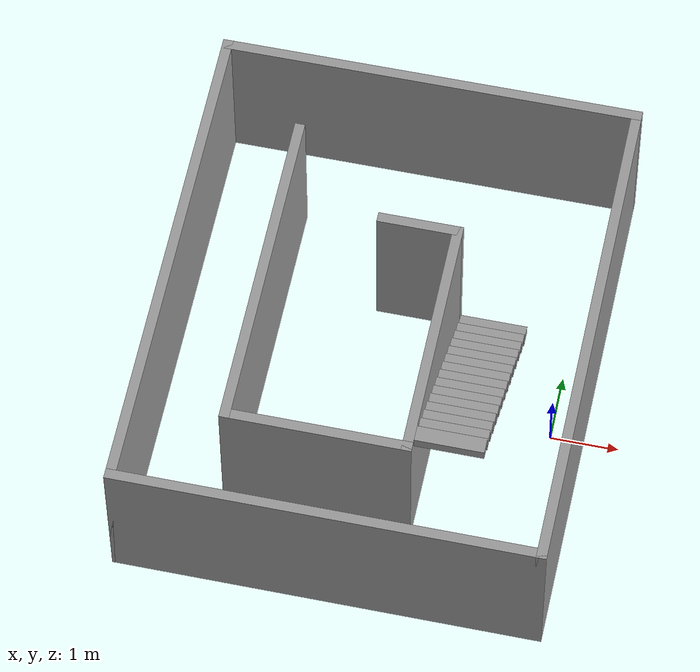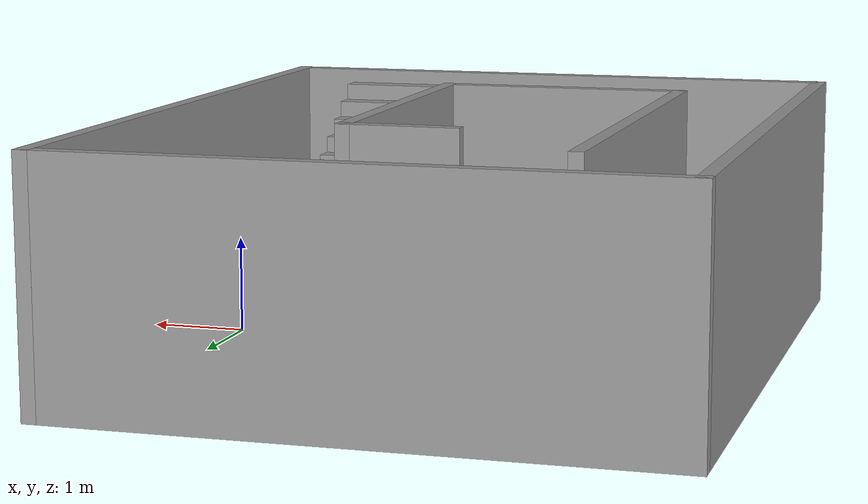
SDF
<?xml version='1.0'?>
<sdf version='1.7'>
  <model name='simple'>
    <pose>-2.6366 0.460694 0 0 -0 0</pose>
    <link name='Stairs_0'>
      <visual name='Stairs_0_Visual_0'>
        <pose>1.46634 1.09807 0.083333 0 -0 0</pose>
        <geometry>
          <box>
            <size>1 0.233333 0.166667</size>
          </box>
        </geometry>
        <material>
          <script>
            <uri>file://media/materials/scripts/gazebo.material</uri>
            <name>Gazebo/Grey</name>
          </script>
          <ambient>1 1 1 1</ambient>
        </material>
        <meta>
          <layer>0</layer>
        </meta>
      </visual>
      <collision name='Stairs_0_Collision_0'>
        <geometry>
          <box>
            <size>1 0.233333 0.166667</size>
          </box>
        </geometry>
        <pose>1.46634 1.09807 0.083333 0 -0 0</pose>
      </collision>
      <visual name='Stairs_0_Visual_1'>
        <pose>1.46634 0.864734 0.25 0 -0 0</pose>
        <geometry>
          <box>
            <size>1 0.233333 0.166667</size>
          </box>
        </geometry>
        <material>
          <script>
            <uri>file://media/materials/scripts/gazebo.material</uri>
            <name>Gazebo/Grey</name>
          </script>
          <ambient>1 1 1 1</ambient>
        </material>
        <meta>
          <layer>0</layer>
        </meta>
      </visual>
      <collision name='Stairs_0_Collision_1'>
        <geometry>
          <box>
            <size>1 0.233333 0.166667</size>
          </box>
        </geometry>
        <pose>1.46634 0.864734 0.25 0 -0 0</pose>
      </collision>
      <visual name='Stairs_0_Visual_2'>
        <pose>1.46634 0.6314 0.416667 0 -0 0</pose>
        <geometry>
          <box>
            <size>1 0.233333 0.166667</size>
          </box>
        </geometry>
        <material>
          <script>
            <uri>file://media/materials/scripts/gazebo.material</uri>
            <name>Gazebo/Grey</name>
          </script>
          <ambient>1 1 1 1</ambient>
        </material>
        <meta>
          <layer>0</layer>
        </meta>
      </visual>
      <collision name='Stairs_0_Collision_2'>
        <geometry>
          <box>
            <size>1 0.233333 0.166667</size>
          </box>
        </geometry>
        <pose>1.46634 0.6314 0.416667 0 -0 0</pose>
      </collision>
      <visual name='Stairs_0_Visual_3'>
        <pose>1.46634 0.398067 0.583333 0 -0 0</pose>
        <geometry>
          <box>
            <size>1 0.233333 0.166667</size>
          </box>
        </geometry>
        <material>
          <script>
            <uri>file://media/materials/scripts/gazebo.material</uri>
            <name>Gazebo/Grey</name>
          </script>
          <ambient>1 1 1 1</ambient>
        </material>
        <meta>
          <layer>0</layer>
        </meta>
      </visual>
      <collision name='Stairs_0_Collision_3'>
        <geometry>
          <box>
            <size>1 0.233333 0.166667</size>
          </box>
        </geometry>
        <pose>1.46634 0.398067 0.583333 0 -0 0</pose>
      </collision>
      <visual name='Stairs_0_Visual_4'>
        <pose>1.46634 0.164734 0.75 0 -0 0</pose>
        <geometry>
          <box>
            <size>1 0.233333 0.166667</size>
          </box>
        </geometry>
        <material>
          <script>
            <uri>file://media/materials/scripts/gazebo.material</uri>
            <name>Gazebo/Grey</name>
          </script>
          <ambient>1 1 1 1</ambient>
        </material>
        <meta>
          <layer>0</layer>
        </meta>
      </visual>
      <collision name='Stairs_0_Collision_4'>
        <geometry>
          <box>
            <size>1 0.233333 0.166667</size>
          </box>
        </geometry>
        <pose>1.46634 0.164734 0.75 0 -0 0</pose>
      </collision>
      <visual name='Stairs_0_Visual_5'>
        <pose>1.46634 -0.0686 0.916667 0 -0 0</pose>
        <geometry>
          <box>
            <size>1 0.233333 0.166667</size>
          </box>
        </geometry>
        <material>
          <script>
            <uri>file://media/materials/scripts/gazebo.material</uri>
            <name>Gazebo/Grey</name>
          </script>
          <ambient>1 1 1 1</ambient>
        </material>
        <meta>
          <layer>0</layer>
        </meta>
      </visual>
      <collision name='Stairs_0_Collision_5'>
        <geometry>
          <box>
            <size>1 0.233333 0.166667</size>
          </box>
        </geometry>
        <pose>1.46634 -0.0686 0.916667 0 -0 0</pose>
      </collision>
      <visual name='Stairs_0_Visual_6'>
        <pose>1.46634 -0.301933 1.08333 0 -0 0</pose>
        <geometry>
          <box>
            <size>1 0.233333 0.166667</size>
          </box>
        </geometry>
        <material>
          <script>
            <uri>file://media/materials/scripts/gazebo.material</uri>
            <name>Gazebo/Grey</name>
          </script>
          <ambient>1 1 1 1</ambient>
        </material>
        <meta>
          <layer>0</layer>
        </meta>
      </visual>
      <collision name='Stairs_0_Collision_6'>
        <geometry>
          <box>
            <size>1 0.233333 0.166667</size>
          </box>
        </geometry>
        <pose>1.46634 -0.301933 1.08333 0 -0 0</pose>
      </collision>
      <visual name='Stairs_0_Visual_7'>
        <pose>1.46634 -0.535266 1.25 0 -0 0</pose>
        <geometry>
          <box>
            <size>1 0.233333 0.166667</size>
          </box>
        </geometry>
        <material>
          <script>
            <uri>file://media/materials/scripts/gazebo.material</uri>
            <name>Gazebo/Grey</name>
          </script>
          <ambient>1 1 1 1</ambient>
        </material>
        <meta>
          <layer>0</layer>
        </meta>
      </visual>
      <collision name='Stairs_0_Collision_7'>
        <geometry>
          <box>
            <size>1 0.233333 0.166667</size>
          </box>
        </geometry>
        <pose>1.46634 -0.535266 1.25 0 -0 0</pose>
      </collision>
      <visual name='Stairs_0_Visual_8'>
        <pose>1.46634 -0.7686 1.41667 0 -0 0</pose>
        <geometry>
          <box>
            <size>1 0.233333 0.166667</size>
          </box>
        </geometry>
        <material>
          <script>
            <uri>file://media/materials/scripts/gazebo.material</uri>
            <name>Gazebo/Grey</name>
          </script>
          <ambient>1 1 1 1</ambient>
        </material>
        <meta>
          <layer>0</layer>
        </meta>
      </visual>
      <collision name='Stairs_0_Collision_8'>
        <geometry>
          <box>
            <size>1 0.233333 0.166667</size>
          </box>
        </geometry>
        <pose>1.46634 -0.7686 1.41667 0 -0 0</pose>
      </collision>
      <visual name='Stairs_0_Visual_9'>
        <pose>1.46634 -1.00193 1.58333 0 -0 0</pose>
        <geometry>
          <box>
            <size>1 0.233333 0.166667</size>
          </box>
        </geometry>
        <material>
          <script>
            <uri>file://media/materials/scripts/gazebo.material</uri>
            <name>Gazebo/Grey</name>
          </script>
          <ambient>1 1 1 1</ambient>
        </material>
        <meta>
          <layer>0</layer>
        </meta>
      </visual>
      <collision name='Stairs_0_Collision_9'>
        <geometry>
          <box>
            <size>1 0.233333 0.166667</size>
          </box>
        </geometry>
        <pose>1.46634 -1.00193 1.58333 0 -0 0</pose>
      </collision>
      <visual name='Stairs_0_Visual_10'>
        <pose>1.46634 -1.23527 1.75 0 -0 0</pose>
        <geometry>
          <box>
            <size>1 0.233333 0.166667</size>
          </box>
        </geometry>
        <material>
          <script>
            <uri>file://media/materials/scripts/gazebo.material</uri>
            <name>Gazebo/Grey</name>
          </script>
          <ambient>1 1 1 1</ambient>
        </material>
        <meta>
          <layer>0</layer>
        </meta>
      </visual>
      <collision name='Stairs_0_Collision_10'>
        <geometry>
          <box>
            <size>1 0.233333 0.166667</size>
          </box>
        </geometry>
        <pose>1.46634 -1.23527 1.75 0 -0 0</pose>
      </collision>
      <visual name='Stairs_0_Visual_11'>
        <pose>1.46634 -1.4686 1.91667 0 -0 0</pose>
        <geometry>
          <box>
            <size>1 0.233333 0.166667</size>
          </box>
        </geometry>
        <material>
          <script>
            <uri>file://media/materials/scripts/gazebo.material</uri>
            <name>Gazebo/Grey</name>
          </script>
          <ambient>1 1 1 1</ambient>
        </material>
        <meta>
          <layer>0</layer>
        </meta>
      </visual>
      <collision name='Stairs_0_Collision_11'>
        <geometry>
          <box>
            <size>1 0.233333 0.166667</size>
          </box>
        </geometry>
        <pose>1.46634 -1.4686 1.91667 0 -0 0</pose>
      </collision>
      <visual name='Stairs_0_Visual_12'>
        <pose>1.46634 -1.70193 2.08333 0 -0 0</pose>
        <geometry>
          <box>
            <size>1 0.233333 0.166667</size>
          </box>
        </geometry>
        <material>
          <script>
            <uri>file://media/materials/scripts/gazebo.material</uri>
            <name>Gazebo/Grey</name>
          </script>
          <ambient>1 1 1 1</ambient>
        </material>
        <meta>
          <layer>0</layer>
        </meta>
      </visual>
      <collision name='Stairs_0_Collision_12'>
        <geometry>
          <box>
            <size>1 0.233333 0.166667</size>
          </box>
        </geometry>
        <pose>1.46634 -1.70193 2.08333 0 -0 0</pose>
      </collision>
      <visual name='Stairs_0_Visual_13'>
        <pose>1.46634 -1.93527 2.25 0 -0 0</pose>
        <geometry>
          <box>
            <size>1 0.233333 0.166667</size>
          </box>
        </geometry>
        <material>
          <script>
            <uri>file://media/materials/scripts/gazebo.material</uri>
            <name>Gazebo/Grey</name>
          </script>
          <ambient>1 1 1 1</ambient>
        </material>
        <meta>
          <layer>0</layer>
        </meta>
      </visual>
      <collision name='Stairs_0_Collision_13'>
        <geometry>
          <box>
            <size>1 0.233333 0.166667</size>
          </box>
        </geometry>
        <pose>1.46634 -1.93527 2.25 0 -0 0</pose>
      </collision>
      <visual name='Stairs_0_Visual_14'>
        <pose>1.46634 -2.1686 2.41667 0 -0 0</pose>
        <geometry>
          <box>
            <size>1 0.233333 0.166667</size>
          </box>
        </geometry>
        <material>
          <script>
            <uri>file://media/materials/scripts/gazebo.material</uri>
            <name>Gazebo/Grey</name>
          </script>
          <ambient>1 1 1 1</ambient>
        </material>
        <meta>
          <layer>0</layer>
        </meta>
      </visual>
      <collision name='Stairs_0_Collision_14'>
        <geometry>
          <box>
            <size>1 0.233333 0.166667</size>
          </box>
        </geometry>
        <pose>1.46634 -2.1686 2.41667 0 -0 0</pose>
      </collision>
    </link>
    <link name='Wall_10'>
      <collision name='Wall_10_Collision'>
        <geometry>
          <box>
            <size>3.75 0.15 2.5</size>
          </box>
        </geometry>
        <pose>0 0 1.25 0 -0 0</pose>
      </collision>
      <visual name='Wall_10_Visual'>
        <pose>0 0 1.25 0 -0 0</pose>
        <geometry>
          <box>
            <size>3.75 0.15 2.5</size>
          </box>
        </geometry>
        <material>
          <script>
            <uri>file://media/materials/scripts/gazebo.material</uri>
            <name>Gazebo/Grey</name>
          </script>
          <ambient>1 1 1 1</ambient>
        </material>
        <meta>
          <layer>0</layer>
        </meta>
      </visual>
      <pose>0.89234 -0.596416 0 0 -0 1.5708</pose>
    </link>
    <link name='Wall_11'>
      <collision name='Wall_11_Collision'>
        <geometry>
          <box>
            <size>1.25 0.15 2.5</size>
          </box>
        </geometry>
        <pose>0 0 1.25 0 -0 0</pose>
      </collision>
      <visual name='Wall_11_Visual'>
        <pose>0 0 1.25 0 -0 0</pose>
        <geometry>
          <box>
            <size>1.25 0.15 2.5</size>
          </box>
        </geometry>
        <material>
          <script>
            <uri>file://media/materials/scripts/gazebo.material</uri>
            <name>Gazebo/Grey</name>
          </script>
          <ambient>1 1 1 1</ambient>
        </material>
        <meta>
          <layer>0</layer>
        </meta>
      </visual>
      <pose>0.34234 1.20358 0 0 -0 3.14159</pose>
    </link>
    <link name='Wall_3'>
      <collision name='Wall_3_Collision'>
        <geometry>
          <box>
            <size>7.5 0.15 2.5</size>
          </box>
        </geometry>
        <pose>0 0 1.25 0 -0 0</pose>
      </collision>
      <visual name='Wall_3_Visual'>
        <pose>0 0 1.25 0 -0 0</pose>
        <geometry>
          <box>
            <size>7.5 0.15 2.5</size>
          </box>
        </geometry>
        <material>
          <script>
            <uri>file://media/materials/scripts/gazebo.material</uri>
            <name>Gazebo/Grey</name>
          </script>
          <ambient>1 1 1 1</ambient>
        </material>
        <meta>
          <layer>0</layer>
        </meta>
      </visual>
      <pose>-3.05 0 0 0 -0 -1.5708</pose>
    </link>
    <link name='Wall_4'>
      <collision name='Wall_4_Collision'>
        <geometry>
          <box>
            <size>6.25 0.15 2.5</size>
          </box>
        </geometry>
        <pose>0 0 1.25 0 -0 0</pose>
      </collision>
      <visual name='Wall_4_Visual'>
        <pose>0 0 1.25 0 -0 0</pose>
        <geometry>
          <box>
            <size>6.25 0.15 2.5</size>
          </box>
        </geometry>
        <material>
          <script>
            <uri>file://media/materials/scripts/gazebo.material</uri>
            <name>Gazebo/Grey</name>
          </script>
          <ambient>1 1 1 1</ambient>
        </material>
        <meta>
          <layer>0</layer>
        </meta>
      </visual>
      <pose>-0 -3.675 0 0 -0 0</pose>
    </link>
    <link name='Wall_5'>
      <collision name='Wall_5_Collision'>
        <geometry>
          <box>
            <size>7.5 0.15 2.5</size>
          </box>
        </geometry>
        <pose>0 0 1.25 0 -0 0</pose>
      </collision>
      <visual name='Wall_5_Visual'>
        <pose>0 0 1.25 0 -0 0</pose>
        <geometry>
          <box>
            <size>7.5 0.15 2.5</size>
          </box>
        </geometry>
        <material>
          <script>
            <uri>file://media/materials/scripts/gazebo.material</uri>
            <name>Gazebo/Grey</name>
          </script>
          <ambient>1 1 1 1</ambient>
        </material>
        <meta>
          <layer>0</layer>
        </meta>
      </visual>
      <pose>3.05 0 0 0 -0 1.5708</pose>
    </link>
    <link name='Wall_6'>
      <collision name='Wall_6_Collision'>
        <geometry>
          <box>
            <size>6.25 0.15 2.5</size>
          </box>
        </geometry>
        <pose>0 0 1.25 0 -0 0</pose>
      </collision>
      <visual name='Wall_6_Visual'>
        <pose>0 0 1.25 0 -0 0</pose>
        <geometry>
          <box>
            <size>6.25 0.15 2.5</size>
          </box>
        </geometry>
        <material>
          <script>
            <uri>file://media/materials/scripts/gazebo.material</uri>
            <name>Gazebo/Grey</name>
          </script>
          <ambient>1 1 1 1</ambient>
        </material>
        <meta>
          <layer>0</layer>
        </meta>
      </visual>
      <pose>-0 3.675 0 0 -0 3.14159</pose>
    </link>
    <link name='Wall_8'>
      <collision name='Wall_8_Collision'>
        <geometry>
          <box>
            <size>5 0.15 2.5</size>
          </box>
        </geometry>
        <pose>0 0 1.25 0 -0 0</pose>
      </collision>
      <visual name='Wall_8_Visual'>
        <pose>0 0 1.25 0 -0 0</pose>
        <geometry>
          <box>
            <size>5 0.15 2.5</size>
          </box>
        </geometry>
        <material>
          <script>
            <uri>file://media/materials/scripts/gazebo.material</uri>
            <name>Gazebo/Grey</name>
          </script>
          <ambient>1 1 1 1</ambient>
        </material>
        <meta>
          <layer>0</layer>
        </meta>
      </visual>
      <pose>-1.70766 0.028584 0 0 -0 -1.5708</pose>
    </link>
    <link name='Wall_9'>
      <collision name='Wall_9_Collision'>
        <geometry>
          <box>
            <size>2.75 0.15 2.5</size>
          </box>
        </geometry>
        <pose>0 0 1.25 0 -0 0</pose>
      </collision>
      <visual name='Wall_9_Visual'>
        <pose>0 0 1.25 0 -0 0</pose>
        <geometry>
          <box>
            <size>2.75 0.15 2.5</size>
          </box>
        </geometry>
        <material>
          <script>
            <uri>file://media/materials/scripts/gazebo.material</uri>
            <name>Gazebo/Grey</name>
          </script>
          <ambient>1 1 1 1</ambient>
        </material>
        <meta>
          <layer>0</layer>
        </meta>
      </visual>
      <pose>-0.40766 -2.39642 0 0 -0 0</pose>
    </link>
    <static>1</static>
  </model>
</sdf>
